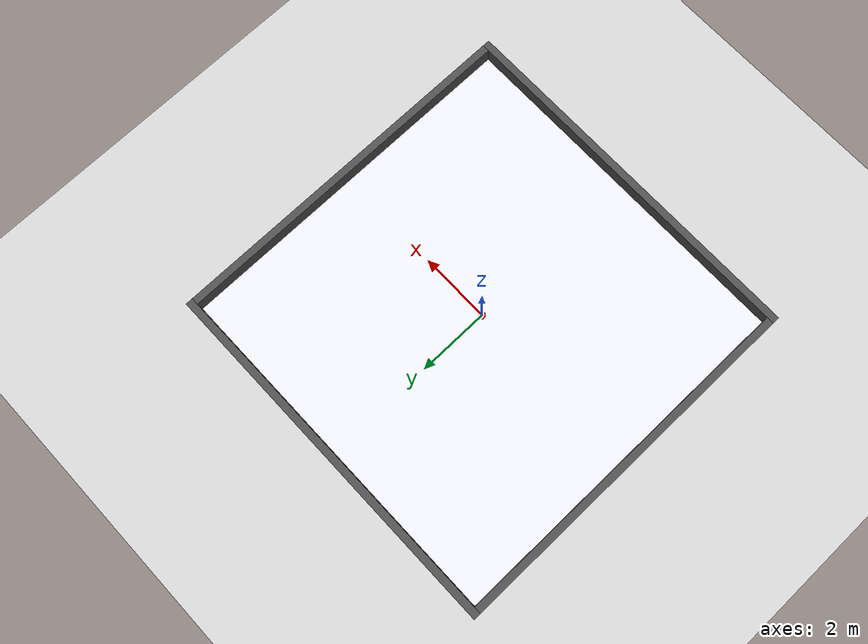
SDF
<?xml version="1.0"?>
<sdf version="1.6">
  <world name="swarm_arena">
    <!-- Physics settings -->
    <physics type="ode">
      <real_time_update_rate>1000.0</real_time_update_rate>
      <max_step_size>0.003</max_step_size>
      <real_time_factor>3.0</real_time_factor>
    </physics>

    <!-- Scene settings -->
    <scene>
      <ambient>0.4 0.4 0.4 1</ambient>
      <background>0.7 0.7 0.7 1</background>
      <shadows>true</shadows>
    </scene>

    <!-- Sun light -->
    <light name="sun" type="directional">
      <cast_shadows>true</cast_shadows>
      <pose>0 0 10 0 0 0</pose>
      <diffuse>0.8 0.8 0.8 1</diffuse>
      <specular>0.2 0.2 0.2 1</specular>
      <attenuation>
        <range>1000</range>
        <constant>0.9</constant>
        <linear>0.01</linear>
        <quadratic>0.001</quadratic>
      </attenuation>
      <direction>-0.5 0.1 -0.9</direction>
    </light>

    <!-- Ground plane -->
    <model name="ground_plane">
      <static>true</static>
      <link name="link">
        <collision name="collision">
          <geometry>
            <plane>
              <normal>0 0 1</normal>
              <size>20 20</size>
            </plane>
          </geometry>
          <surface>
            <friction>
              <ode>
                <mu>100</mu>
                <mu2>50</mu2>
              </ode>
            </friction>
          </surface>
        </collision>
        <visual name="visual">
          <cast_shadows>false</cast_shadows>
          <geometry>
            <plane>
              <normal>0 0 1</normal>
              <size>20 20</size>
            </plane>
          </geometry>
          <material>
            <ambient>0.8 0.8 0.8 1</ambient>
            <diffuse>0.8 0.8 0.8 1</diffuse>
          </material>
        </visual>
      </link>
    </model>

    <!-- Arena floor (10x10m) with grid lines -->
    <model name="arena_floor">
      <static>true</static>
      <pose>0 0 0.001 0 0 0</pose>
      <link name="link">
        <visual name="visual">
          <geometry>
            <plane>
              <normal>0 0 1</normal>
              <size>10 10</size>
            </plane>
          </geometry>
          <material>
            <ambient>0.9 0.9 0.95 1</ambient>
            <diffuse>0.9 0.9 0.95 1</diffuse>
          </material>
        </visual>
      </link>
    </model>

    <!-- Arena boundaries (walls) -->
    <!-- North wall -->
    <model name="wall_north">
      <static>true</static>
      <pose>0 5.1 0.25 0 0 0</pose>
      <link name="link">
        <collision name="collision">
          <geometry>
            <box><size>10.4 0.2 0.5</size></box>
          </geometry>
        </collision>
        <visual name="visual">
          <geometry>
            <box><size>10.4 0.2 0.5</size></box>
          </geometry>
          <material>
            <ambient>0.3 0.3 0.3 1</ambient>
            <diffuse>0.3 0.3 0.3 1</diffuse>
          </material>
        </visual>
      </link>
    </model>

    <!-- South wall -->
    <model name="wall_south">
      <static>true</static>
      <pose>0 -5.1 0.25 0 0 0</pose>
      <link name="link">
        <collision name="collision">
          <geometry>
            <box><size>10.4 0.2 0.5</size></box>
          </geometry>
        </collision>
        <visual name="visual">
          <geometry>
            <box><size>10.4 0.2 0.5</size></box>
          </geometry>
          <material>
            <ambient>0.3 0.3 0.3 1</ambient>
            <diffuse>0.3 0.3 0.3 1</diffuse>
          </material>
        </visual>
      </link>
    </model>

    <!-- East wall -->
    <model name="wall_east">
      <static>true</static>
      <pose>5.1 0 0.25 0 0 0</pose>
      <link name="link">
        <collision name="collision">
          <geometry>
            <box><size>0.2 10 0.5</size></box>
          </geometry>
        </collision>
        <visual name="visual">
          <geometry>
            <box><size>0.2 10 0.5</size></box>
          </geometry>
          <material>
            <ambient>0.3 0.3 0.3 1</ambient>
            <diffuse>0.3 0.3 0.3 1</diffuse>
          </material>
        </visual>
      </link>
    </model>

    <!-- West wall -->
    <model name="wall_west">
      <static>true</static>
      <pose>-5.1 0 0.25 0 0 0</pose>
      <link name="link">
        <collision name="collision">
          <geometry>
            <box><size>0.2 10 0.5</size></box>
          </geometry>
        </collision>
        <visual name="visual">
          <geometry>
            <box><size>0.2 10 0.5</size></box>
          </geometry>
          <material>
            <ambient>0.3 0.3 0.3 1</ambient>
            <diffuse>0.3 0.3 0.3 1</diffuse>
          </material>
        </visual>
      </link>
    </model>

    <!-- Origin marker -->
    <model name="origin_marker">
      <static>true</static>
      <pose>0 0 0.01 0 0 0</pose>
      <link name="link">
        <visual name="visual">
          <geometry>
            <cylinder>
              <radius>0.1</radius>
              <length>0.02</length>
            </cylinder>
          </geometry>
          <material>
            <ambient>1 0 0 1</ambient>
            <diffuse>1 0 0 1</diffuse>
          </material>
        </visual>
      </link>
    </model>

  </world>
</sdf>
